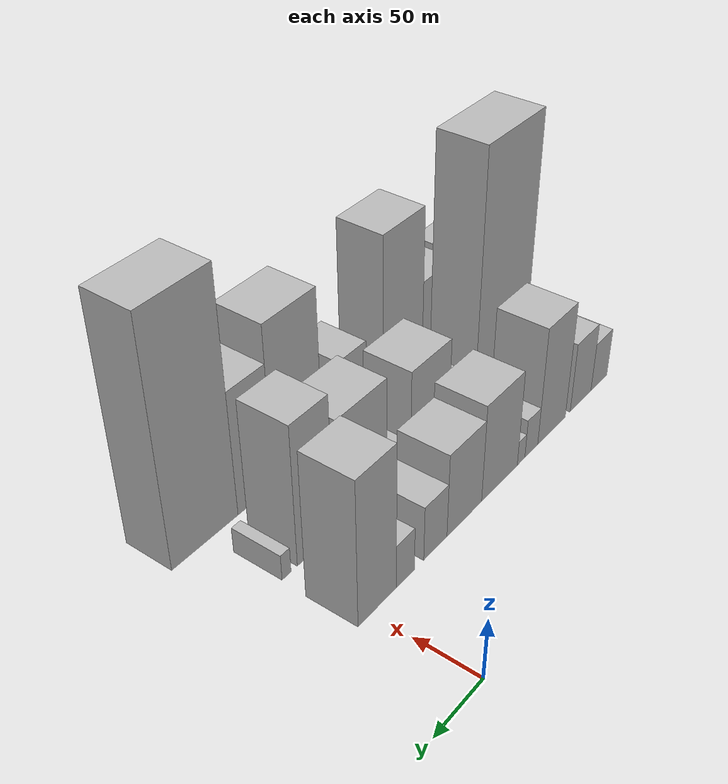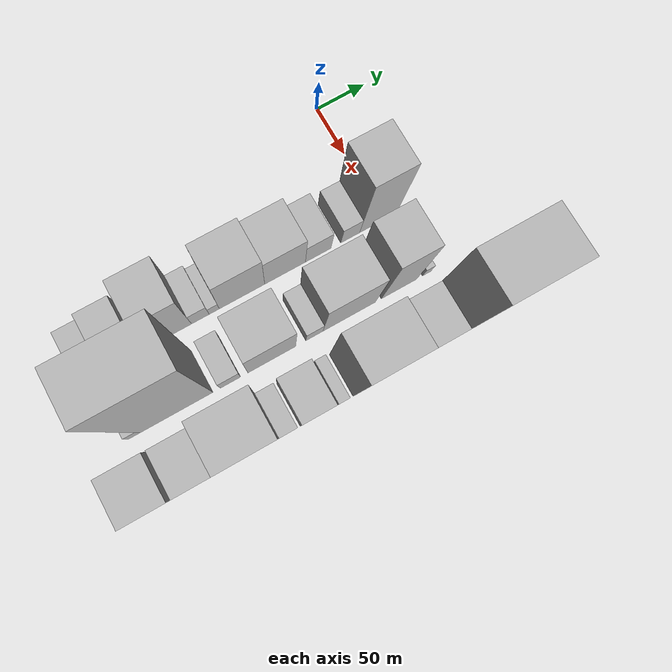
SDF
<sdf version="1.6">
 <world name="default">
  <model name="building_10">
   <static>1</static>
   <pose>100.0000 -278.2052 0 0.000000 0.000000 0.000000</pose>
   <link name="link">
    <pose>0 0 21.00 0 0 0</pose>
    <collision name="collision"><geometry><box><size>40.0000 24.1245 42.0000</size></box></geometry></collision>
    <visual name="visual">
     <cast_shadows>0</cast_shadows>
     <geometry><box><size>40.0000 24.1245 42.0000</size></box></geometry>
     <material>
      <script>
       <uri>model://HANNAS_wall/materials/scripts</uri>
       <uri>model://HANNAS_wall/materials/textures</uri>
       <name>vrc/HANNAS_wall</name>
      </script>
     </material>
    </visual>
   </link>
  </model>
  <model name="building_11">
   <static>1</static>
   <pose>100.0000 -250.9909 0 0.000000 0.000000 0.000000</pose>
   <link name="link">
    <pose>0 0 30.00 0 0 0</pose>
    <collision name="collision"><geometry><box><size>40.0000 30.3041 60.0000</size></box></geometry></collision>
    <visual name="visual">
     <cast_shadows>0</cast_shadows>
     <geometry><box><size>40.0000 30.3041 60.0000</size></box></geometry>
     <material>
      <script>
       <uri>model://HANNAS_wall/materials/scripts</uri>
       <uri>model://HANNAS_wall/materials/textures</uri>
       <name>vrc/HANNAS_wall</name>
      </script>
     </material>
    </visual>
   </link>
  </model>
  <model name="building_12">
   <static>1</static>
   <pose>100.0000 -209.8831 0 0.000000 0.000000 0.000000</pose>
   <link name="link">
    <pose>0 0 49.50 0 0 0</pose>
    <collision name="collision"><geometry><box><size>40.0000 37.9116 99.0000</size></box></geometry></collision>
    <visual name="visual">
     <cast_shadows>0</cast_shadows>
     <geometry><box><size>40.0000 37.9116 99.0000</size></box></geometry>
     <material>
      <script>
       <uri>model://HANNAS_wall/materials/scripts</uri>
       <uri>model://HANNAS_wall/materials/textures</uri>
       <name>vrc/HANNAS_wall</name>
      </script>
     </material>
    </visual>
   </link>
  </model>
  <model name="building_13">
   <static>1</static>
   <pose>100.0000 -182.4297 0 0.000000 0.000000 0.000000</pose>
   <link name="link">
    <pose>0 0 16.50 0 0 0</pose>
    <collision name="collision"><geometry><box><size>40.0000 16.9952 33.0000</size></box></geometry></collision>
    <visual name="visual">
     <cast_shadows>0</cast_shadows>
     <geometry><box><size>40.0000 16.9952 33.0000</size></box></geometry>
     <material>
      <script>
       <uri>model://HANNAS_wall/materials/scripts</uri>
       <uri>model://HANNAS_wall/materials/textures</uri>
       <name>vrc/HANNAS_wall</name>
      </script>
     </material>
    </visual>
   </link>
  </model>
  <model name="building_14">
   <static>1</static>
   <pose>100.0000 -169.0373 0 0.000000 0.000000 0.000000</pose>
   <link name="link">
    <pose>0 0 10.50 0 0 0</pose>
    <collision name="collision"><geometry><box><size>40.0000 9.7896 21.0000</size></box></geometry></collision>
    <visual name="visual">
     <cast_shadows>0</cast_shadows>
     <geometry><box><size>40.0000 9.7896 21.0000</size></box></geometry>
     <material>
      <script>
       <uri>model://HANNAS_wall/materials/scripts</uri>
       <uri>model://HANNAS_wall/materials/textures</uri>
       <name>vrc/HANNAS_wall</name>
      </script>
     </material>
    </visual>
   </link>
  </model>
  <model name="building_15">
   <static>1</static>
   <pose>100.0000 -141.9730 0 0.000000 0.000000 0.000000</pose>
   <link name="link">
    <pose>0 0 40.50 0 0 0</pose>
    <collision name="collision"><geometry><box><size>40.0000 44.3388 81.0000</size></box></geometry></collision>
    <visual name="visual">
     <cast_shadows>0</cast_shadows>
     <geometry><box><size>40.0000 44.3388 81.0000</size></box></geometry>
     <material>
      <script>
       <uri>model://HANNAS_wall/materials/scripts</uri>
       <uri>model://HANNAS_wall/materials/textures</uri>
       <name>vrc/HANNAS_wall</name>
      </script>
     </material>
    </visual>
   </link>
  </model>
  <model name="building_16">
   <static>1</static>
   <pose>100.0000 -99.6615 0 0.000000 0.000000 0.000000</pose>
   <link name="link">
    <pose>0 0 34.50 0 0 0</pose>
    <collision name="collision"><geometry><box><size>40.0000 40.2842 69.0000</size></box></geometry></collision>
    <visual name="visual">
     <cast_shadows>0</cast_shadows>
     <geometry><box><size>40.0000 40.2842 69.0000</size></box></geometry>
     <material>
      <script>
       <uri>model://HANNAS_wall/materials/scripts</uri>
       <uri>model://HANNAS_wall/materials/textures</uri>
       <name>vrc/HANNAS_wall</name>
      </script>
     </material>
    </visual>
   </link>
  </model>
  <model name="building_17">
   <static>1</static>
   <pose>100.0000 -66.7461 0 0.000000 0.000000 0.000000</pose>
   <link name="link">
    <pose>0 0 22.50 0 0 0</pose>
    <collision name="collision"><geometry><box><size>40.0000 25.5467 45.0000</size></box></geometry></collision>
    <visual name="visual">
     <cast_shadows>0</cast_shadows>
     <geometry><box><size>40.0000 25.5467 45.0000</size></box></geometry>
     <material>
      <script>
       <uri>model://HANNAS_wall/materials/scripts</uri>
       <uri>model://HANNAS_wall/materials/textures</uri>
       <name>vrc/HANNAS_wall</name>
      </script>
     </material>
    </visual>
   </link>
  </model>
  <model name="building_18">
   <static>1</static>
   <pose>100.0000 -34.4902 0 0.000000 0.000000 0.000000</pose>
   <link name="link">
    <pose>0 0 18.00 0 0 0</pose>
    <collision name="collision"><geometry><box><size>40.0000 18.9651 36.0000</size></box></geometry></collision>
    <visual name="visual">
     <cast_shadows>0</cast_shadows>
     <geometry><box><size>40.0000 18.9651 36.0000</size></box></geometry>
     <material>
      <script>
       <uri>model://HANNAS_wall/materials/scripts</uri>
       <uri>model://HANNAS_wall/materials/textures</uri>
       <name>vrc/HANNAS_wall</name>
      </script>
     </material>
    </visual>
   </link>
  </model>
  <model name="building_19">
   <static>1</static>
   <pose>100.0000 -6.0359 0 0.000000 0.000000 0.000000</pose>
   <link name="link">
    <pose>0 0 58.50 0 0 0</pose>
    <collision name="collision"><geometry><box><size>40.0000 37.9435 117.0000</size></box></geometry></collision>
    <visual name="visual">
     <cast_shadows>0</cast_shadows>
     <geometry><box><size>40.0000 37.9435 117.0000</size></box></geometry>
     <material>
      <script>
       <uri>model://HANNAS_wall/materials/scripts</uri>
       <uri>model://HANNAS_wall/materials/textures</uri>
       <name>vrc/HANNAS_wall</name>
      </script>
     </material>
    </visual>
   </link>
  </model>
  <model name="building_47">
   <static>1</static>
   <pose>160.0000 -275.7168 0 0.000000 0.000000 0.000000</pose>
   <link name="link">
    <pose>0 0 12.00 0 0 0</pose>
    <collision name="collision"><geometry><box><size>40.0000 10.9546 24.0000</size></box></geometry></collision>
    <visual name="visual">
     <cast_shadows>0</cast_shadows>
     <geometry><box><size>40.0000 10.9546 24.0000</size></box></geometry>
     <material>
      <script>
       <uri>model://HANNAS_wall/materials/scripts</uri>
       <uri>model://HANNAS_wall/materials/textures</uri>
       <name>vrc/HANNAS_wall</name>
      </script>
     </material>
    </visual>
   </link>
  </model>
  <model name="building_48">
   <static>1</static>
   <pose>160.0000 -236.1369 0 0.000000 0.000000 0.000000</pose>
   <link name="link">
    <pose>0 0 103.50 0 0 0</pose>
    <collision name="collision"><geometry><box><size>40.0000 68.2053 207.0000</size></box></geometry></collision>
    <visual name="visual">
     <cast_shadows>0</cast_shadows>
     <geometry><box><size>40.0000 68.2053 207.0000</size></box></geometry>
     <material>
      <script>
       <uri>model://HANNAS_wall/materials/scripts</uri>
       <uri>model://HANNAS_wall/materials/textures</uri>
       <name>vrc/HANNAS_wall</name>
      </script>
     </material>
    </visual>
   </link>
  </model>
  <model name="building_49">
   <static>1</static>
   <pose>160.0000 -185.4264 0 0.000000 0.000000 0.000000</pose>
   <link name="link">
    <pose>0 0 16.50 0 0 0</pose>
    <collision name="collision"><geometry><box><size>40.0000 19.2157 33.0000</size></box></geometry></collision>
    <visual name="visual">
     <cast_shadows>0</cast_shadows>
     <geometry><box><size>40.0000 19.2157 33.0000</size></box></geometry>
     <material>
      <script>
       <uri>model://HANNAS_wall/materials/scripts</uri>
       <uri>model://HANNAS_wall/materials/textures</uri>
       <name>vrc/HANNAS_wall</name>
      </script>
     </material>
    </visual>
   </link>
  </model>
  <model name="building_50">
   <static>1</static>
   <pose>160.0000 -145.8420 0 0.000000 0.000000 0.000000</pose>
   <link name="link">
    <pose>0 0 39.00 0 0 0</pose>
    <collision name="collision"><geometry><box><size>40.0000 45.9530 78.0000</size></box></geometry></collision>
    <visual name="visual">
     <cast_shadows>0</cast_shadows>
     <geometry><box><size>40.0000 45.9530 78.0000</size></box></geometry>
     <material>
      <script>
       <uri>model://HANNAS_wall/materials/scripts</uri>
       <uri>model://HANNAS_wall/materials/textures</uri>
       <name>vrc/HANNAS_wall</name>
      </script>
     </material>
    </visual>
   </link>
  </model>
  <model name="building_51">
   <static>1</static>
   <pose>160.0000 -104.5533 0 0.000000 0.000000 0.000000</pose>
   <link name="link">
    <pose>0 0 15.00 0 0 0</pose>
    <collision name="collision"><geometry><box><size>40.0000 16.6244 30.0000</size></box></geometry></collision>
    <visual name="visual">
     <cast_shadows>0</cast_shadows>
     <geometry><box><size>40.0000 16.6244 30.0000</size></box></geometry>
     <material>
      <script>
       <uri>model://HANNAS_wall/materials/scripts</uri>
       <uri>model://HANNAS_wall/materials/textures</uri>
       <name>vrc/HANNAS_wall</name>
      </script>
     </material>
    </visual>
   </link>
  </model>
  <model name="building_52">
   <static>1</static>
   <pose>160.0000 -70.3179 0 0.000000 0.000000 0.000000</pose>
   <link name="link">
    <pose>0 0 45.00 0 0 0</pose>
    <collision name="collision"><geometry><box><size>40.0000 51.8465 90.0000</size></box></geometry></collision>
    <visual name="visual">
     <cast_shadows>0</cast_shadows>
     <geometry><box><size>40.0000 51.8465 90.0000</size></box></geometry>
     <material>
      <script>
       <uri>model://HANNAS_wall/materials/scripts</uri>
       <uri>model://HANNAS_wall/materials/textures</uri>
       <name>vrc/HANNAS_wall</name>
      </script>
     </material>
    </visual>
   </link>
  </model>
  <model name="building_53">
   <static>1</static>
   <pose>160.0000 -20.6945 0 0.000000 0.000000 0.000000</pose>
   <link name="link">
    <pose>0 0 57.00 0 0 0</pose>
    <collision name="collision"><geometry><box><size>40.0000 35.4002 114.0000</size></box></geometry></collision>
    <visual name="visual">
     <cast_shadows>0</cast_shadows>
     <geometry><box><size>40.0000 35.4002 114.0000</size></box></geometry>
     <material>
      <script>
       <uri>model://HANNAS_wall/materials/scripts</uri>
       <uri>model://HANNAS_wall/materials/textures</uri>
       <name>vrc/HANNAS_wall</name>
      </script>
     </material>
    </visual>
   </link>
  </model>
  <model name="building_54">
   <static>1</static>
   <pose>160.0000 7.2912 0 0.000000 0.000000 0.000000</pose>
   <link name="link">
    <pose>0 0 10.50 0 0 0</pose>
    <collision name="collision"><geometry><box><size>40.0000 8.5712 21.0000</size></box></geometry></collision>
    <visual name="visual">
     <cast_shadows>0</cast_shadows>
     <geometry><box><size>40.0000 8.5712 21.0000</size></box></geometry>
     <material>
      <script>
       <uri>model://HANNAS_wall/materials/scripts</uri>
       <uri>model://HANNAS_wall/materials/textures</uri>
       <name>vrc/HANNAS_wall</name>
      </script>
     </material>
    </visual>
   </link>
  </model>
  <model name="building_82">
   <static>1</static>
   <pose>220.0000 -283.6856 0 0.000000 0.000000 0.000000</pose>
   <link name="link">
    <pose>0 0 37.50 0 0 0</pose>
    <collision name="collision"><geometry><box><size>40.0000 39.6629 75.0000</size></box></geometry></collision>
    <visual name="visual">
     <cast_shadows>0</cast_shadows>
     <geometry><box><size>40.0000 39.6629 75.0000</size></box></geometry>
     <material>
      <script>
       <uri>model://HANNAS_wall/materials/scripts</uri>
       <uri>model://HANNAS_wall/materials/textures</uri>
       <name>vrc/HANNAS_wall</name>
      </script>
     </material>
    </visual>
   </link>
  </model>
  <model name="building_83">
   <static>1</static>
   <pose>220.0000 -240.8507 0 0.000000 0.000000 0.000000</pose>
   <link name="link">
    <pose>0 0 36.00 0 0 0</pose>
    <collision name="collision"><geometry><box><size>40.0000 40.0069 72.0000</size></box></geometry></collision>
    <visual name="visual">
     <cast_shadows>0</cast_shadows>
     <geometry><box><size>40.0000 40.0069 72.0000</size></box></geometry>
     <material>
      <script>
       <uri>model://HANNAS_wall/materials/scripts</uri>
       <uri>model://HANNAS_wall/materials/textures</uri>
       <name>vrc/HANNAS_wall</name>
      </script>
     </material>
    </visual>
   </link>
  </model>
  <model name="building_84">
   <static>1</static>
   <pose>220.0000 -196.3805 0 0.000000 0.000000 0.000000</pose>
   <link name="link">
    <pose>0 0 67.50 0 0 0</pose>
    <collision name="collision"><geometry><box><size>40.0000 48.9335 135.0000</size></box></geometry></collision>
    <visual name="visual">
     <cast_shadows>0</cast_shadows>
     <geometry><box><size>40.0000 48.9335 135.0000</size></box></geometry>
     <material>
      <script>
       <uri>model://HANNAS_wall/materials/scripts</uri>
       <uri>model://HANNAS_wall/materials/textures</uri>
       <name>vrc/HANNAS_wall</name>
      </script>
     </material>
    </visual>
   </link>
  </model>
  <model name="building_85">
   <static>1</static>
   <pose>220.0000 -163.4614 0 0.000000 0.000000 0.000000</pose>
   <link name="link">
    <pose>0 0 16.50 0 0 0</pose>
    <collision name="collision"><geometry><box><size>40.0000 16.9048 33.0000</size></box></geometry></collision>
    <visual name="visual">
     <cast_shadows>0</cast_shadows>
     <geometry><box><size>40.0000 16.9048 33.0000</size></box></geometry>
     <material>
      <script>
       <uri>model://HANNAS_wall/materials/scripts</uri>
       <uri>model://HANNAS_wall/materials/textures</uri>
       <name>vrc/HANNAS_wall</name>
      </script>
     </material>
    </visual>
   </link>
  </model>
  <model name="building_86">
   <static>1</static>
   <pose>220.0000 -136.4566 0 0.000000 0.000000 0.000000</pose>
   <link name="link">
    <pose>0 0 30.00 0 0 0</pose>
    <collision name="collision"><geometry><box><size>40.0000 31.1047 60.0000</size></box></geometry></collision>
    <visual name="visual">
     <cast_shadows>0</cast_shadows>
     <geometry><box><size>40.0000 31.1047 60.0000</size></box></geometry>
     <material>
      <script>
       <uri>model://HANNAS_wall/materials/scripts</uri>
       <uri>model://HANNAS_wall/materials/textures</uri>
       <name>vrc/HANNAS_wall</name>
      </script>
     </material>
    </visual>
   </link>
  </model>
  <model name="building_87">
   <static>1</static>
   <pose>220.0000 -111.6052 0 0.000000 0.000000 0.000000</pose>
   <link name="link">
    <pose>0 0 12.00 0 0 0</pose>
    <collision name="collision"><geometry><box><size>40.0000 10.5981 24.0000</size></box></geometry></collision>
    <visual name="visual">
     <cast_shadows>0</cast_shadows>
     <geometry><box><size>40.0000 10.5981 24.0000</size></box></geometry>
     <material>
      <script>
       <uri>model://HANNAS_wall/materials/scripts</uri>
       <uri>model://HANNAS_wall/materials/textures</uri>
       <name>vrc/HANNAS_wall</name>
      </script>
     </material>
    </visual>
   </link>
  </model>
  <model name="building_88">
   <static>1</static>
   <pose>220.0000 -75.5158 0 0.000000 0.000000 0.000000</pose>
   <link name="link">
    <pose>0 0 66.00 0 0 0</pose>
    <collision name="collision"><geometry><box><size>40.0000 51.5807 132.0000</size></box></geometry></collision>
    <visual name="visual">
     <cast_shadows>0</cast_shadows>
     <geometry><box><size>40.0000 51.5807 132.0000</size></box></geometry>
     <material>
      <script>
       <uri>model://HANNAS_wall/materials/scripts</uri>
       <uri>model://HANNAS_wall/materials/textures</uri>
       <name>vrc/HANNAS_wall</name>
      </script>
     </material>
    </visual>
   </link>
  </model>
  <model name="building_89">
   <static>1</static>
   <pose>220.0000 -32.1170 0 0.000000 0.000000 0.000000</pose>
   <link name="link">
    <pose>0 0 51.00 0 0 0</pose>
    <collision name="collision"><geometry><box><size>40.0000 35.2169 102.0000</size></box></geometry></collision>
    <visual name="visual">
     <cast_shadows>0</cast_shadows>
     <geometry><box><size>40.0000 35.2169 102.0000</size></box></geometry>
     <material>
      <script>
       <uri>model://HANNAS_wall/materials/scripts</uri>
       <uri>model://HANNAS_wall/materials/textures</uri>
       <name>vrc/HANNAS_wall</name>
      </script>
     </material>
    </visual>
   </link>
  </model>
  <model name="building_90">
   <static>1</static>
   <pose>220.0000 15.9270 0 0.000000 0.000000 0.000000</pose>
   <link name="link">
    <pose>0 0 97.50 0 0 0</pose>
    <collision name="collision"><geometry><box><size>40.0000 60.8711 195.0000</size></box></geometry></collision>
    <visual name="visual">
     <cast_shadows>0</cast_shadows>
     <geometry><box><size>40.0000 60.8711 195.0000</size></box></geometry>
     <material>
      <script>
       <uri>model://HANNAS_wall/materials/scripts</uri>
       <uri>model://HANNAS_wall/materials/textures</uri>
       <name>vrc/HANNAS_wall</name>
      </script>
     </material>
    </visual>
   </link>
  </model>
 </world>
</sdf>
